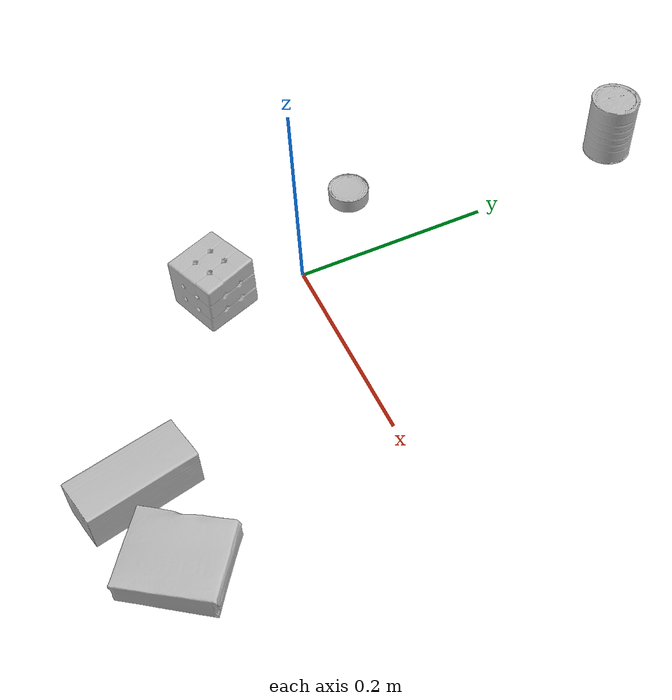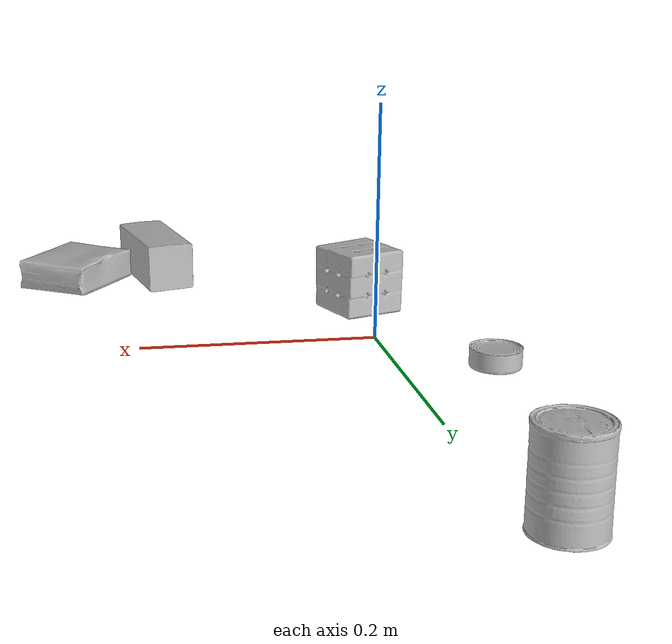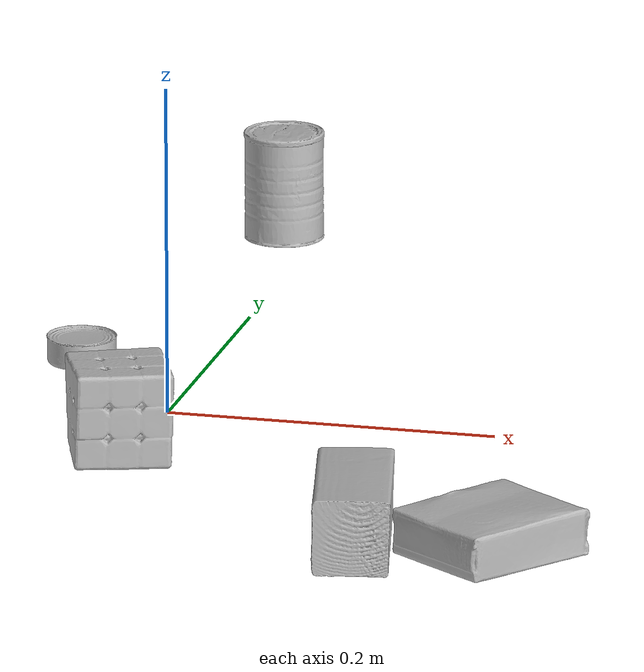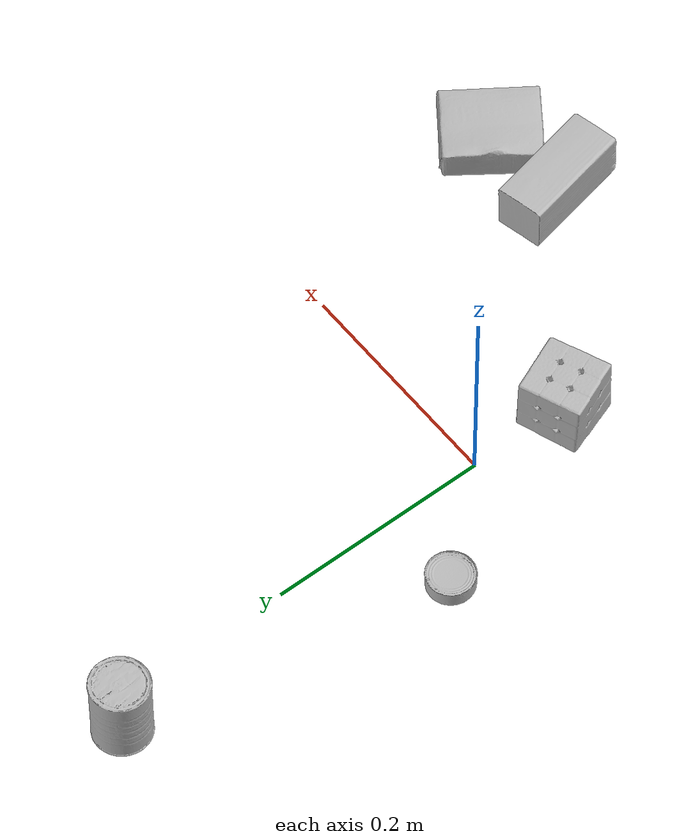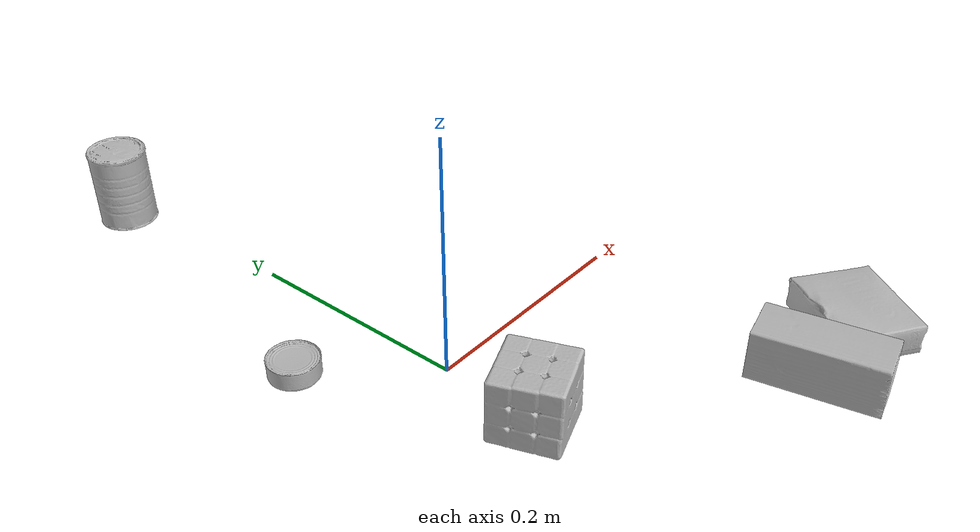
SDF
<sdf version="1.4">
  <world name="default">
    <light name="light1" type="point">
      <pose>0 0 1 0 0 0</pose>
      <diffuse>3 3 3 1</diffuse>
      <specular>3 3 3 1</specular>
    </light>
    <light name="light2" type="point">
      <pose>0 0.5 2 0 0 0</pose>
      <diffuse>1 1 1 1</diffuse>
      <specular>1 1 1 1</specular>
    </light>
    <light name="light3" type="point">
      <pose>0 0.5 2 0 0 0</pose>
      <diffuse>3 3 3 1</diffuse>
      <specular>3 3 3 1</specular>
    </light>
    <scene>
      <ambient>0.7 0.7 0.7</ambient>
    </scene>
    <model name="box1">
      <link name="link_box1">
        <collision name="default">
          <geometry>
            <mesh>
              <uri>model://rubiks_cube/collision_meshes/collision.obj</uri>
              <scale>1.0 1.0 1.0</scale>
            </mesh>
          </geometry>
          <surface>
            <friction>
              <ode>
                <mu>0.5</mu>
                <mu2>0.5</mu2>
              </ode>
            </friction>
          <contact>
        <ode>
            <max_vel>0</max_vel>
            <min_depth>0.0001</min_depth>
            <kp>1e8</kp>
        </ode>
    </contact></surface>
        </collision>
        <visual name="default">
          <geometry>
            <mesh>
              <uri>model://rubiks_cube/visual_meshes/visual.dae</uri>
              <scale>1.0 1.0 1.0</scale>
            </mesh>
          </geometry>
        </visual>
        <inertial>
          <mass>0.1675702929496765</mass>
          <pose>2.6721041649580002e-05 5.2569666877388954e-05 -7.264316082000732e-06 -0.054672410780645164 -0.09813946178663992 -0.034457105846518836</pose>
          <inertia>
            <ixx>9.259384e-05</ixx>
            <iyy>9.2162045e-05</iyy>
            <izz>9.336113e-05</izz>
            <ixy>0</ixy>
            <ixz>0</ixz>
            <iyz>0</iyz>
          </inertia>
        </inertial>
      </link>
      <pose>-0.006075646728277206 -0.08792521804571152 0.02867899276316166 -2.1137275804980946e-06 -2.060212899410845e-07 1.9525226225147272</pose>
    </model>
    <model name="box2">
      <link name="link_box2">
        <collision name="default">
          <geometry>
            <mesh>
              <uri>model://wood_block/collision_meshes/collision.obj</uri>
              <scale>0.5 0.5 0.5</scale>
            </mesh>
          </geometry>
          <surface>
            <friction>
              <ode>
                <mu>0.5</mu>
                <mu2>0.5</mu2>
              </ode>
            </friction>
          <contact>
        <ode>
            <max_vel>0</max_vel>
            <min_depth>0.0001</min_depth>
            <kp>1e8</kp>
        </ode>
    </contact></surface>
        </collision>
        <visual name="default">
          <geometry>
            <mesh>
              <uri>model://wood_block/visual_meshes/visual.dae</uri>
              <scale>0.5 0.5 0.5</scale>
            </mesh>
          </geometry>
        </visual>
        <inertial>
          <mass>0.20594346523284912</mass>
          <pose>-2.9066577553749084e-06 -0.000285404734313488 0.00013204291462898254 -0.05220975528833662 -0.005192695571830849 -0.0068613788586691015</pose>
          <inertia>
            <ixx>6.8895875e-05</ixx>
            <iyy>0.0002176421</iyy>
            <izz>0.00021682802</izz>
            <ixy>0</ixy>
            <ixz>0</ixz>
            <iyz>0</iyz>
          </inertia>
        </inertial>
      </link>
      <pose>0.16769753396511078 -0.2234175056219101 0.022527482360601425 -0.015849366667158124 -0.00040136993332608894 -1.3590575556803732</pose>
    </model>
    <model name="box3">
      <link name="link_box3">
        <collision name="default">
          <geometry>
            <mesh>
              <uri>model://gelatin_box/collision_meshes/collision.obj</uri>
              <scale>1.0 1.0 1.0</scale>
            </mesh>
          </geometry>
          <surface>
            <friction>
              <ode>
                <mu>0.5</mu>
                <mu2>0.5</mu2>
              </ode>
            </friction>
          <contact>
        <ode>
            <max_vel>0</max_vel>
            <min_depth>0.0001</min_depth>
            <kp>1e8</kp>
        </ode>
    </contact></surface>
        </collision>
        <visual name="default">
          <geometry>
            <mesh>
              <uri>model://gelatin_box/visual_meshes/visual.dae</uri>
              <scale>1.0 1.0 1.0</scale>
            </mesh>
          </geometry>
        </visual>
        <inertial>
          <mass>0.27371785044670105</mass>
          <pose>0.0004319618456065655 0.00011156871914863586 -0.0003640321083366871 -0.0010503717367230932 -0.004755817294347581 0.01644056133308036</pose>
          <inertia>
            <ixx>0.00019322247</ixx>
            <iyy>0.00013801781</iyy>
            <izz>0.00029412765</izz>
            <ixy>0</ixy>
            <ixz>0</ixz>
            <iyz>0</iyz>
          </inertia>
        </inertial>
      </link>
      <pose>0.2459770292043686 -0.21473628282546997 0.01516831386834383 0.00559748336324424 -0.007304544487578368 2.5063495297686593</pose>
    </model>
    <model name="can1">
      <link name="link_can1">
        <collision name="default">
          <geometry>
            <mesh>
              <uri>model://master_chef_can/collision_meshes/collision.obj</uri>
              <scale>0.5 0.5 0.5</scale>
            </mesh>
          </geometry>
          <surface>
            <friction>
              <ode>
                <mu>0.5</mu>
                <mu2>0.5</mu2>
              </ode>
            </friction>
          <contact>
        <ode>
            <max_vel>0</max_vel>
            <min_depth>0.0001</min_depth>
            <kp>1e8</kp>
        </ode>
    </contact></surface>
        </collision>
        <visual name="default">
          <geometry>
            <mesh>
              <uri>model://master_chef_can/visual_meshes/visual.dae</uri>
              <scale>0.5 0.5 0.5</scale>
            </mesh>
          </geometry>
        </visual>
        <inertial>
          <mass>0.18439537286758423</mass>
          <pose>-4.6619643399026245e-05 1.3926847941547749e-07 -5.080040136817843e-05 -0.0017995053130472594 0.0006479450382529565 -0.6102509153361354</pose>
          <inertia>
            <ixx>0.00010822757</ixx>
            <iyy>0.00010743104</iyy>
            <izz>5.9804017e-05</izz>
            <ixy>0</ixy>
            <ixz>0</ixz>
            <iyz>0</iyz>
          </inertia>
        </inertial>
      </link>
      <pose>-0.021321548148989677 0.37379807233810425 0.03530198708176613 -1.269341179565565e-06 -9.721414490753746e-07 2.118120767378974</pose>
    </model>
    <model name="can2">
      <link name="link_can2">
        <collision name="default">
          <geometry>
            <mesh>
              <uri>model://tuna_fish_can/collision_meshes/collision.obj</uri>
              <scale>0.5 0.5 0.5</scale>
            </mesh>
          </geometry>
          <surface>
            <friction>
              <ode>
                <mu>0.5</mu>
                <mu2>0.5</mu2>
              </ode>
            </friction>
          <contact>
        <ode>
            <max_vel>0</max_vel>
            <min_depth>0.0001</min_depth>
            <kp>1e8</kp>
        </ode>
    </contact></surface>
        </collision>
        <visual name="default">
          <geometry>
            <mesh>
              <uri>model://tuna_fish_can/visual_meshes/visual.dae</uri>
              <scale>0.5 0.5 0.5</scale>
            </mesh>
          </geometry>
        </visual>
        <inertial>
          <mass>0.02825223281979561</mass>
          <pose>-2.0362142095109448e-05 -7.256046956172213e-06 -0.0005269023240543902 -0.0017944745775900258 0.00017164550693472895 0.24055441971144348</pose>
          <inertia>
            <ixx>3.819744e-06</ixx>
            <iyy>3.803824e-06</iyy>
            <izz>6.536128e-06</izz>
            <ixy>0</ixy>
            <ixz>0</ixz>
            <iyz>0</iyz>
          </inertia>
        </inertial>
      </link>
      <pose>-0.07665509730577469 0.08652490377426147 0.00851999968290329 -2.0586024930460267e-08 -1.9239386812972626e-08 3.133308821931543</pose>
    </model>
  <physics type="ode">
      <max_contacts>50</max_contacts>
      <ode>
        <solver>
          <type>quick</type>
          <iters>75</iters>
        </solver>
        <constraints>
          <contact_max_correcting_vel>0</contact_max_correcting_vel>
          <contact_surface_layer>0</contact_surface_layer>
        </constraints>
      </ode>
    </physics></world>
</sdf>
